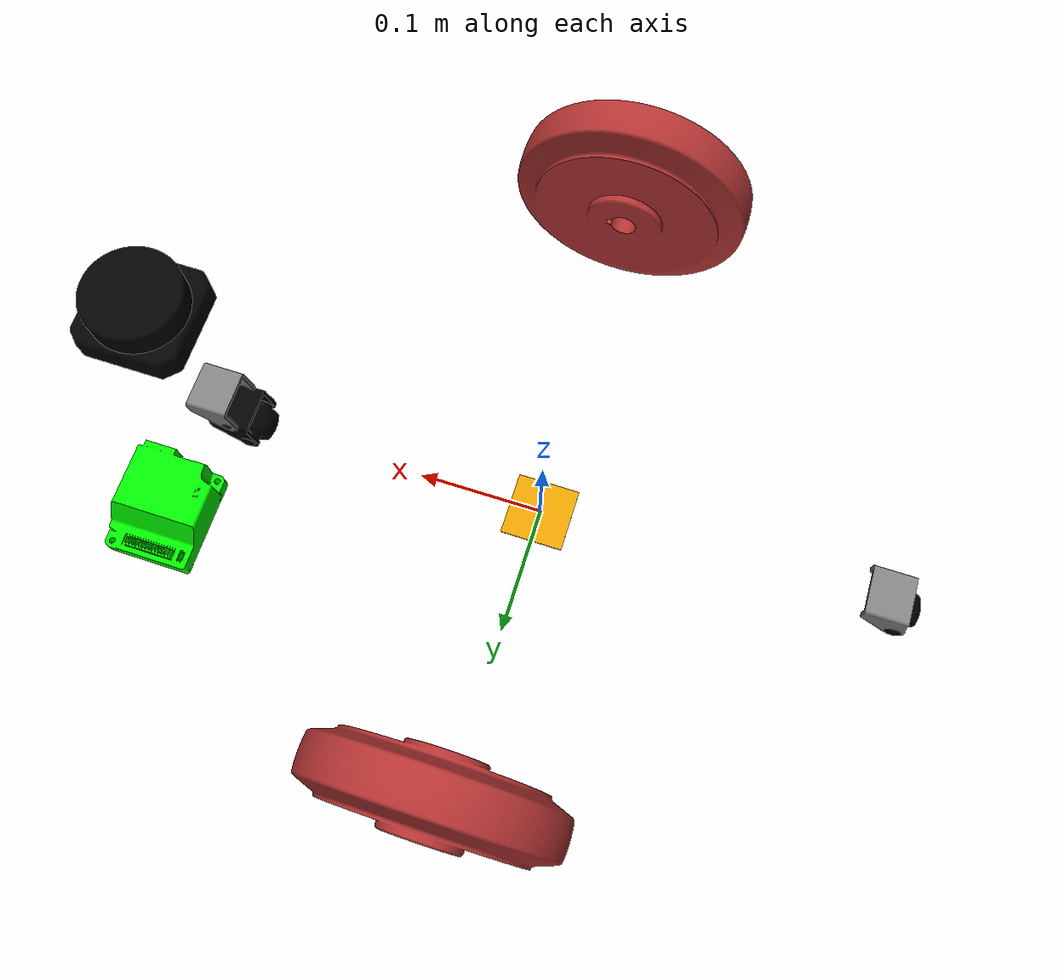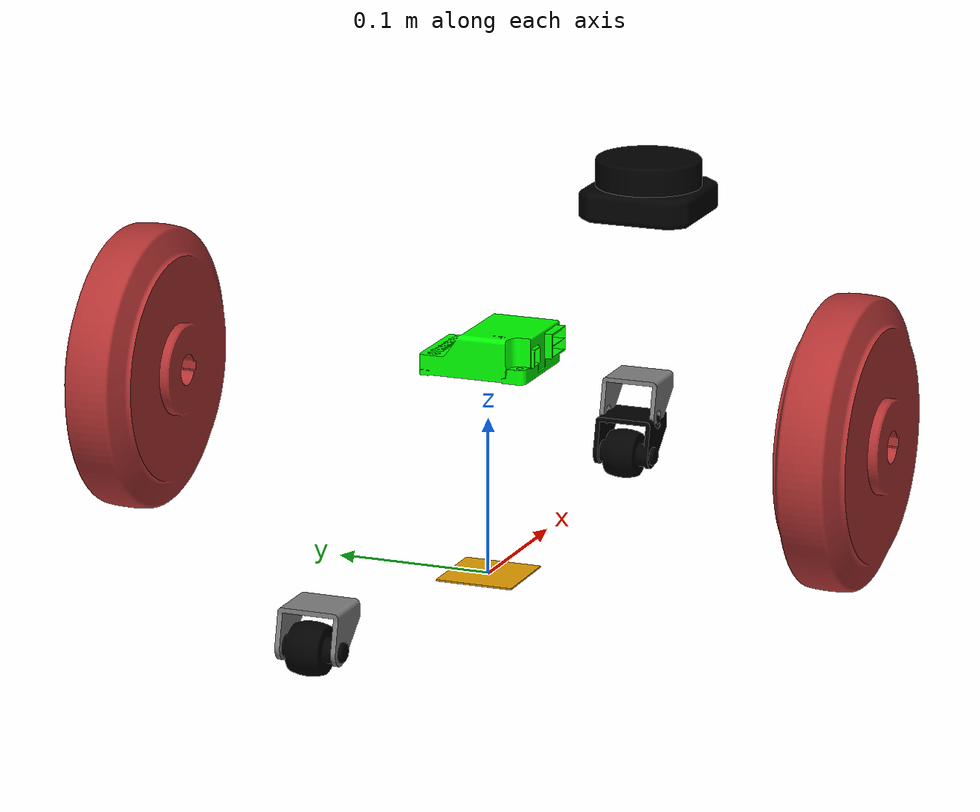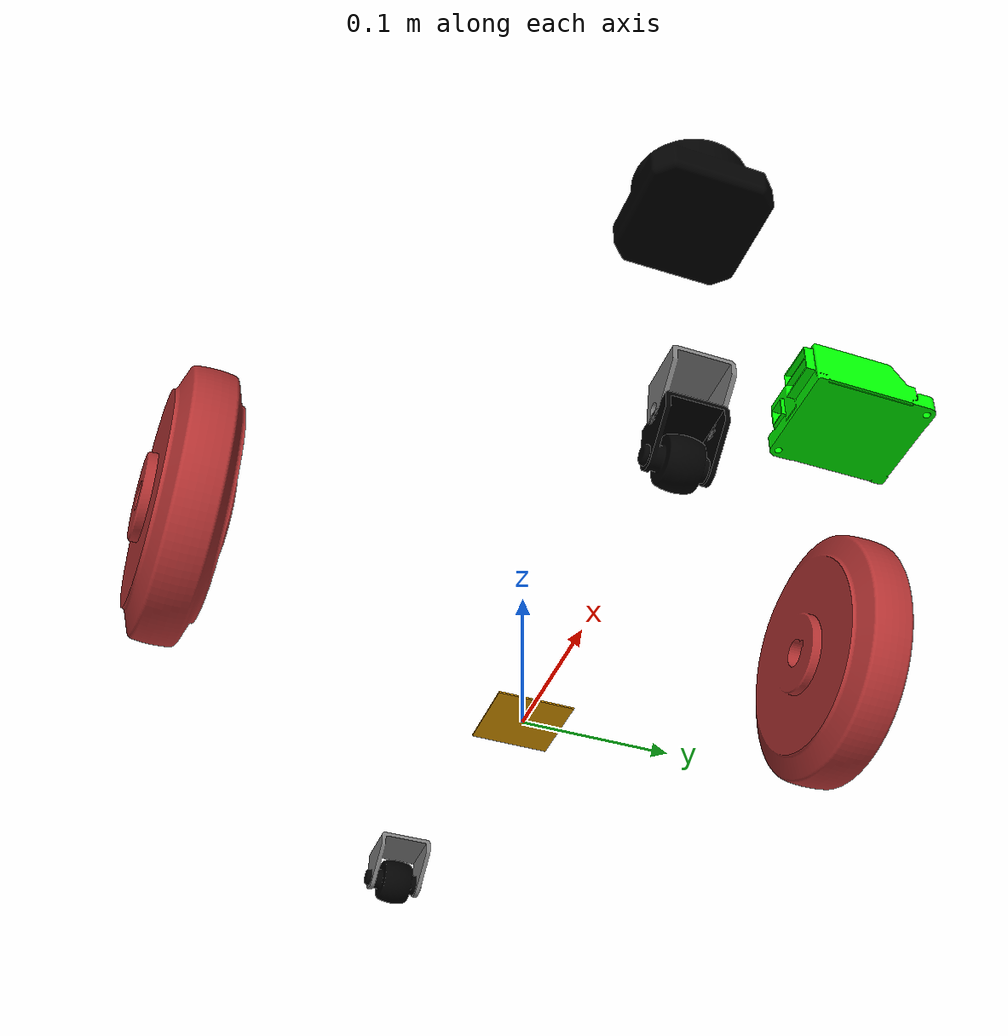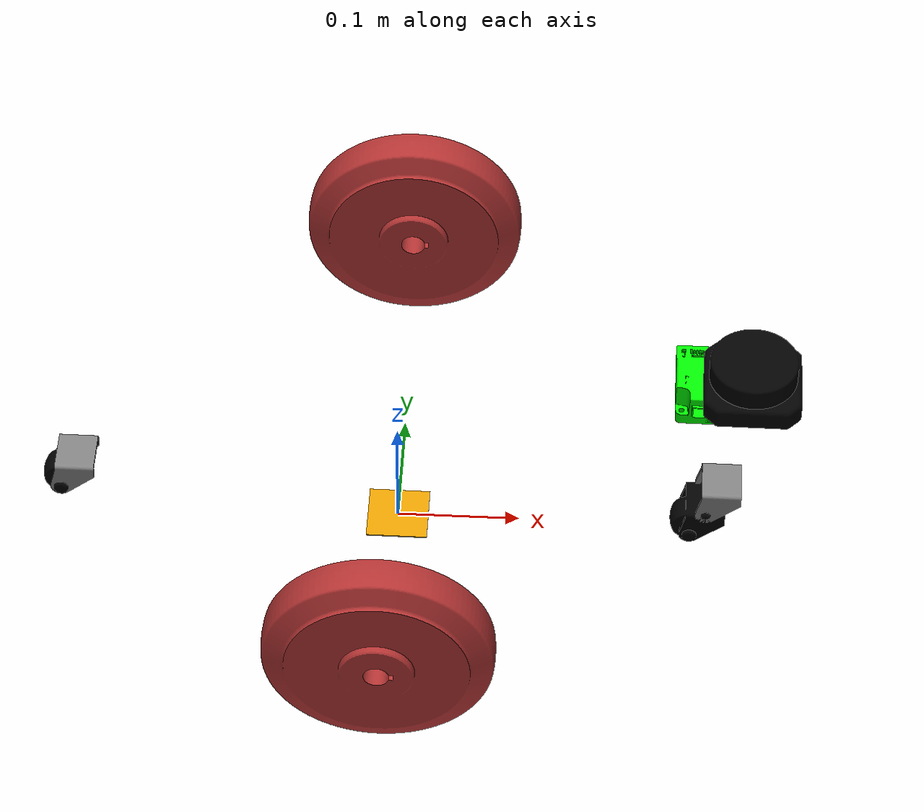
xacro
<?xml version="1.0"?>
<robot xmlns:xacro="http://www.ros.org/wiki/xacro" name="amr">

    <!-- 定义属性 -->
    <!-- 定义 STL 比例，用于缩放 STL 文件的网格 -->
    <xacro:property name="stl_scale" value="0.001 0.001 0.001"/>
    <!-- 定义各个部分的颜色: 底盘、驱动轮、万向轮、激光雷达 -->
    <xacro:property name="base_color" value="0.5 0.5 0.5 1.0"/> <!-- 本体的颜色：灰色 -->
    <xacro:property name="wheel_color" value="0.7 0.2 0.2 1.0"/> <!-- 左右驱动轮的颜色：红色 -->
    <xacro:property name="caster_color" value="0.0 0.0 0.0 1.0"/> <!-- 前后万向轮的颜色：黑色 -->
    <xacro:property name="lidar_color" value="0.0 0.0 0.0 1.0"/> <!-- 激光雷达的颜色：黑色 -->
    <xacro:property name="imu_color" value="0.0 1.0 0.0 1.0"/> <!-- 激光雷达的颜色：绿色 -->

    <!-- 虚拟根链接 (base_footprint) -->
    <!-- base_footprint 是虚拟的参考框架，用来定义机器人在地面上的位置和姿态 -->
    <link name="base_footprint">
        <visual>
            <origin xyz="0 0 0" rpy="0 0 0" />
            <geometry>
                <box size="0.05 0.05 0.001" />
            </geometry>
        </visual>
    </link>

    <!-- base_link 是底盘的主要框架，与虚拟根链接 base_footprint 通过固定关节连接 -->
    <joint name="base_footprint_to_base_link" type="fixed">
        <parent link="base_footprint"/> <!-- 连接到 base_footprint -->
        <child link="base_link"/> <!-- base_link 作为子链接 -->
        <origin xyz="0 0 0.02" rpy="0 0 0"/> <!-- 原点和旋转设置 -->
    </joint>

    <!-- 底盘 (base_link) -->
    <!--
        参数说明:
            - 形状: 长方体
            - 尺寸: 长66.8厘米, 宽57.8厘米, 高18厘米
            - 离地间隙: 2厘米
            - STL 网格文件: base_link.stl
    -->
    <link name="base_link">
        <visual>
            <origin xyz="0 0 0" rpy="0 0 0" />
            <geometry>
                <!-- 视觉形状 -->
                <mesh filename="package://amr_description/meshes/base_link.stl" scale="${stl_scale}"/>
            </geometry>
            <material name="grey">
                <color rgba="${base_color}"/> <!-- 设置底盘颜色 -->
            </material>
        </visual>
        <collision>
            <geometry>
                <!-- 与视觉形状一致，用于碰撞检测 -->
                <mesh filename="package://amr_description/meshes/base_link.stl" scale="${stl_scale}"/>
            </geometry>
        </collision>
    </link>

    <!-- 左右驱动轮 -->
    <!--
        参数说明:
            - 半径: 9厘米
            - 宽度: 4.5厘米
            - 颜色: 黑色
            - STL 网格文件: left_wheel.stl
                           right_wheel.stl
    -->
    <link name="left_wheel">
        <visual>
            <geometry>
                <mesh filename="package://amr_description/meshes/left_wheel.stl" scale="${stl_scale}"/>
            </geometry>
            <material name="red">
                <color rgba="${wheel_color}"/> <!-- 设置轮子的颜色 -->
            </material>
        </visual>
        <collision>
            <geometry>
                <mesh filename="package://amr_description/meshes/left_wheel.stl" scale="${stl_scale}"/>
            </geometry>
        </collision>
    </link>

    <joint name="base_link_to_left_wheel" type="continuous"> <!-- 关节类型为 continuous 表示连续旋转 -->
        <parent link="base_link" />
        <child link="left_wheel" />
        <origin xyz="0 0.23215 0.09"/> <!-- 根据底盘和轮子尺寸设置左轮的位置和离地距离 -->
        <axis xyz="0 1 0" /> <!-- 左轮沿 y 轴旋转 -->
    </joint>

    <link name="right_wheel">
        <visual>
            <geometry>
                <mesh filename="package://amr_description/meshes/right_wheel.stl" scale="${stl_scale}"/>
            </geometry>
            <material name="red">
                <color rgba="${wheel_color}"/> <!-- 颜色设置一致 -->
            </material>
        </visual>
        <collision>
            <geometry>
                <mesh filename="package://amr_description/meshes/right_wheel.stl" scale="${stl_scale}"/>
            </geometry>
        </collision>
    </link>

    <joint name="base_link_to_right_wheel" type="continuous">
        <parent link="base_link" />
        <child link="right_wheel" />
        <origin xyz="0 -0.23215 0.09"/>
        <axis xyz="0 1 0" /> <!-- 右轮沿 y 轴旋转 -->
    </joint>

    <!-- 前后万向轮叉架 -->
    <!--
        参数说明:
            - 颜色: 灰色
            - STL 网格文件: front_fork.stl
                            back_fork.stl
    -->
    <link name="front_fork">
        <visual>
            <geometry>
                <mesh filename="package://amr_description/meshes/front_fork.stl" scale="${stl_scale}"/>
            </geometry>
            <material name="grey"/>
        </visual>
        <collision>
            <geometry>
                <mesh filename="package://amr_description/meshes/front_fork.stl" scale="${stl_scale}"/>
            </geometry>
        </collision>
    </link>

    <!-- 万向节的 joint -->
    <joint name="base_link_to_front_fork" type="continuous">
        <parent link="base_link"/> <!-- 父链接为车体 -->
        <child link="front_fork"/> <!-- 子链接为叉架 -->
        <origin xyz="0.264 0 0.0369" rpy="0 0 0"/> <!-- 叉架相对于车体的原点和姿态 -->
        <axis xyz="0 0 1"/> <!-- 允许叉架围绕 Z 轴自由旋转（万向功能） -->
    </joint>

    <link name="back_fork">
        <visual>
            <geometry>
                <mesh filename="package://amr_description/meshes/back_fork.stl" scale="${stl_scale}"/>
            </geometry>
            <material name="grey"/>
        </visual>
        <collision>
            <geometry>
                <mesh filename="package://amr_description/meshes/back_fork.stl" scale="${stl_scale}"/>
            </geometry>
        </collision>
    </link>

    <joint name="base_link_to_back_fork" type="continuous">
        <parent link="base_link"/> <!-- 父链接为车体 -->
        <child link="back_fork"/> <!-- 子链接为叉架 -->
        <origin xyz="-0.264 0 0.0369" rpy="0 0 0"/> <!-- 叉架相对于车体的原点和姿态 -->
        <axis xyz="0 0 1"/> <!-- 允许叉架围绕 Z 轴自由旋转（万向功能） -->
    </joint>

    <!-- 前后万向轮 (支撑轮) -->
    <!--
        参数说明:
            - 颜色: 黑色
            - STL 网格文件: front_caster.stl
                            back_caster.stl
    -->
    <link name="front_caster">
        <visual>
            <geometry>
                <mesh filename="package://amr_description/meshes/front_caster.stl" scale="${stl_scale}"/>
            </geometry>
            <material name="black">
                <color rgba="${caster_color}"/> <!-- 设置前万向轮的颜色 -->
            </material>
        </visual>
        <collision>
            <geometry>
                <mesh filename="package://amr_description/meshes/front_caster.stl" scale="${stl_scale}"/>
            </geometry>
        </collision>
    </link>

    <joint name="front_fork_to_front_caster" type="continuous">
        <parent link="front_fork" />
        <child link="front_caster" />
        <origin xyz="-0.012 0 -0.0209"/> <!-- 前万向轮放置在底盘前部，离地适中 -->
        <axis xyz="0 1 0"/> <!-- 前万向轮自由旋转 -->
    </joint>

    <link name="back_caster">
        <visual>
            <geometry>
                <mesh filename="package://amr_description/meshes/back_caster.stl" scale="${stl_scale}"/>
            </geometry>
            <material name="black">
                <color rgba="${caster_color}"/> <!-- 设置后万向轮的颜色 -->
            </material>
        </visual>
        <collision>
            <geometry>
                <mesh filename="package://amr_description/meshes/back_caster.stl" scale="${stl_scale}"/>
            </geometry>
        </collision>
    </link>

    <joint name="back_fork_to_back_caster" type="continuous">
        <parent link="back_fork" />
        <child link="back_caster" />
        <origin xyz="-0.012 0 -0.0209"/> <!-- 后万向轮放置在底盘后部，对称于前万向轮 -->
        <axis xyz="0 1 0"/> <!-- 后万向轮自由旋转 -->
    </joint>

    <!-- 激光雷达 (laser) -->
    <!--
        参数说明:
            - 高度: 3.885厘米
            - 半径: 7.7厘米
            - STL 网格文件: laser.stl
    -->
    <link name="laser">
        <visual>
            <geometry>
                <mesh filename="package://amr_description/meshes/laser.stl" scale="${stl_scale}"/>
            </geometry>
            <material name="black">
                <color rgba="${lidar_color}"/>
            </material>
        </visual>
        <collision>
            <geometry>
                <mesh filename="package://amr_description/meshes/laser.stl" scale="${stl_scale}"/>
            </geometry>
        </collision>
    </link>

    <!-- laser 通过固定关节连接到 base_link -->
    <joint name="base_link_to_laser" type="fixed">
        <parent link="base_link"/>
        <child link="laser"/>
        <origin xyz="0.2815 0 0.17223265" rpy="0 0 ${pi}"/> <!-- 激光雷达相对于车体的原点和姿态 -->
    </joint>

    <!-- 惯性测量单元 (imu) -->
    <!--
        参数说明:
            - STL 网格文件: imu_link.stl
    -->
    <link name="imu_link">
        <visual>
            <geometry>
                <mesh filename="package://amr_description/meshes/imu_link.stl" scale="${stl_scale}"/>
            </geometry>
            <material name="green">
                <color rgba="${imu_color}"/>
            </material>
        </visual>
        <collision>
            <geometry>
                <mesh filename="package://amr_description/meshes/imu_link.stl" scale="${stl_scale}"/>
            </geometry>
        </collision>
    </link>

    <!-- imu 通过固定关节连接到 base_link -->
    <joint name="base_link_to_imu" type="fixed">
        <parent link="base_link"/>
        <child link="imu_link"/>
        <origin xyz="0.2575 0.1025 0.035" rpy="0 0 0"/>
    </joint>

</robot>
